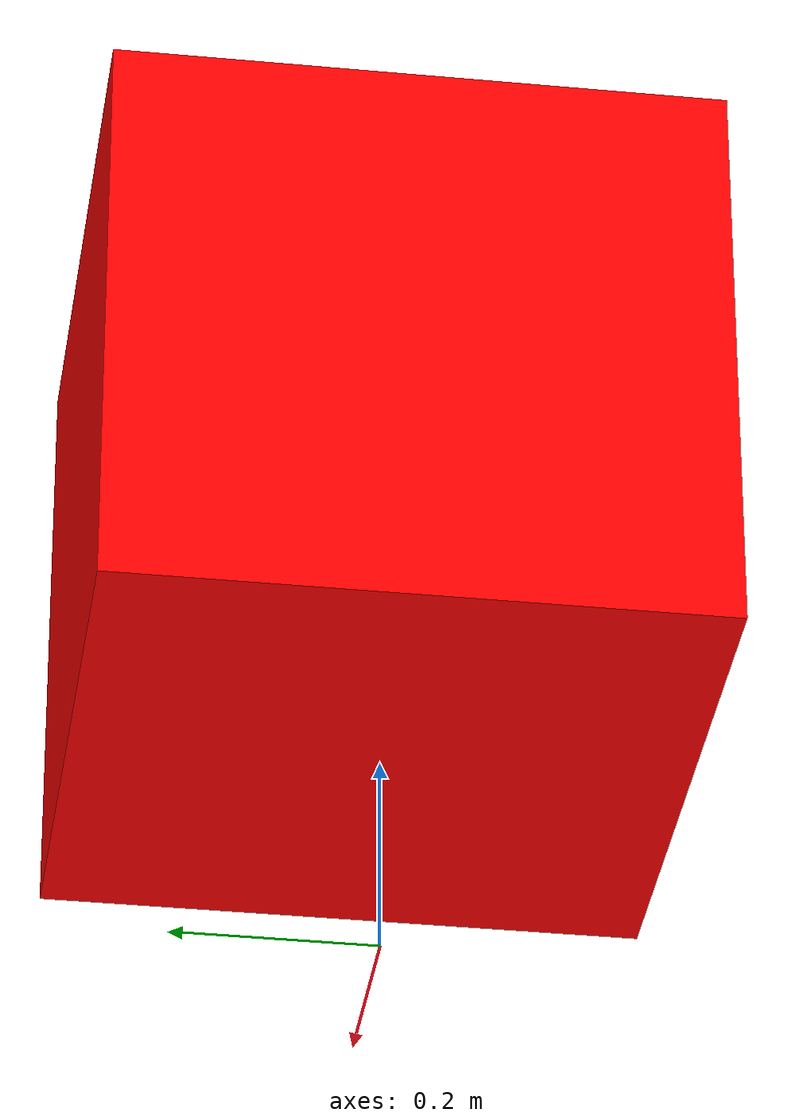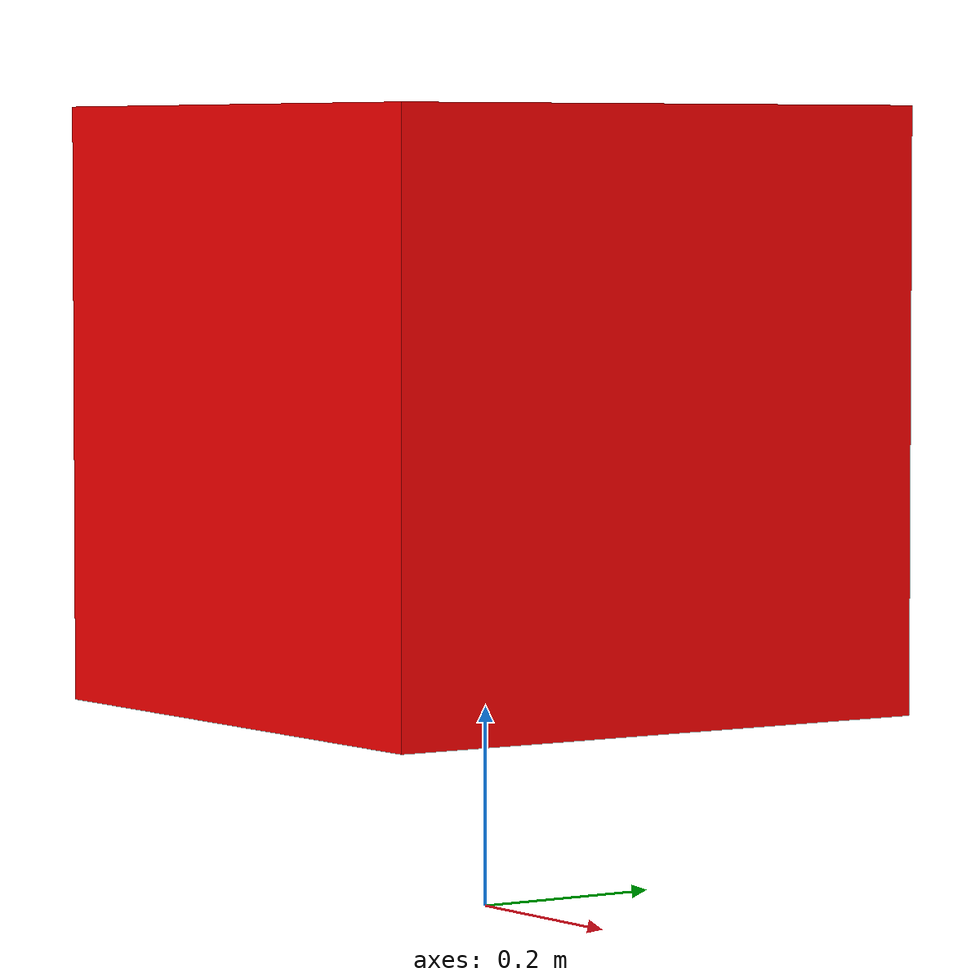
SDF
<?xml version='1.0'?>
<sdf version="1.4">
<model name="my_model">
  <pose>0 0 0.5 0 0 0</pose>
    <link name="link">
      <inertial>
        <mass>50.0</mass>
        <inertia> <!-- inertias are tricky to compute -->
          <!-- http://gazebosim.org/tutorials?tut=inertia&cat=build_robot -->
          <ixx>0.083</ixx>       <!-- for a box: ixx = 0.083 * mass * (y*y + z*z) -->
          <ixy>0.0</ixy>         <!-- for a box: ixy = 0 -->
          <ixz>0.0</ixz>         <!-- for a box: ixz = 0 -->
          <iyy>0.083</iyy>       <!-- for a box: iyy = 0.083 * mass * (x*x + z*z) -->
          <iyz>0.0</iyz>         <!-- for a box: iyz = 0 -->
          <izz>0.083</izz>       <!-- for a box: izz = 0.083 * mass * (x*x + y*y) -->
        </inertia>
      </inertial>
      <collision name="collision">
        <geometry>
          <box>
            <size>0.6 0.6 0.6</size>
          </box>
        </geometry>
      <surface>
        <friction>
          <ode>
            <mu>0.001</mu>
            <mu2>0.001</mu2>
          </ode>
        </friction>
      </surface>
      </collision>
      <visual name="visual">

        <geometry>
          <box>
            <size>0.6 0.6 0.6</size>
          </box>
        </geometry>
          <material>
    <ambient>1 0 0 1</ambient>
    <diffuse>1 0 0 1</diffuse>
    <specular>0.1 0.1 0.1 1</specular>
    <emissive>0 0 0 0</emissive>
  </material>
      </visual>
    </link>
  </model>
</sdf>
